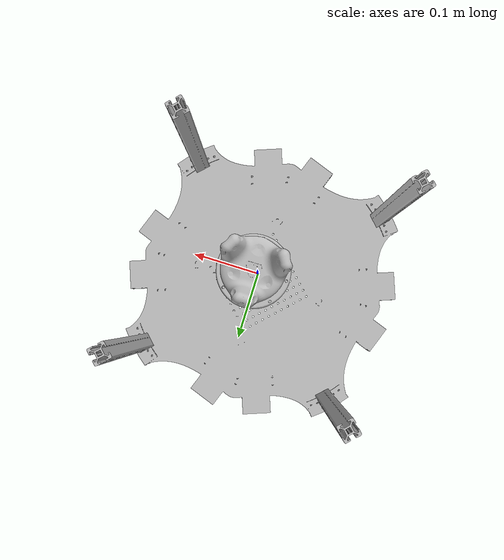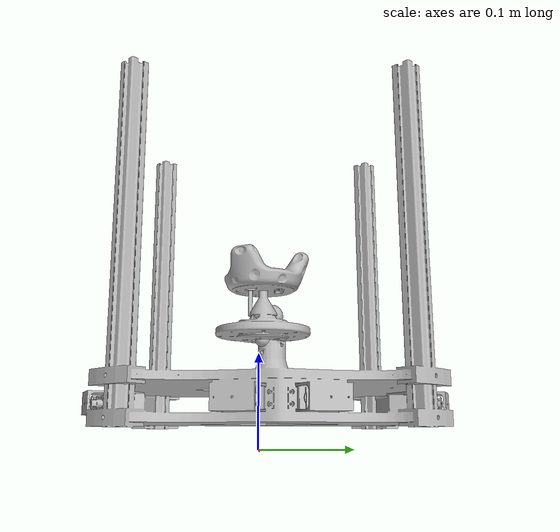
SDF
<sdf version="1.6">
	<model name="msj_platform_head">
		<link name="base">
			<self_collide>false</self_collide>
			<pose frame="">-0.009722422261997021 0.00986687305771657 0.0551351522633794 0.0 -0.0 0.0</pose>
			<inertial>
				<pose frame="">0.0 0.0 0.0 0 0 0</pose>
				<mass>15.629842988436991</mass>
				<inertia>
					<ixx>0.37101179139154744</ixx>
					<ixy>0.020544761689086373</ixy>
					<ixz>0.058964832543668265</ixz>
					<iyy>0.37110336276629335</iyy>
					<iyz>-0.05906303191293011</iyz>
					<izz>0.32968638674351486</izz>
				</inertia>
			</inertial>
			<collision name="base_collision">
				<geometry>
					<mesh>
						<uri>model://msj_platform_head/meshes/collisions/base.stl</uri>
						<scale>0.001 0.001 0.001</scale>
					</mesh>
				</geometry>
			</collision>
			<visual name="base_visual">
				<geometry>
					<mesh>
						<uri>model://msj_platform_head/meshes/visuals/base.stl</uri>
						<scale>0.001 0.001 0.001</scale>
					</mesh>
				</geometry>
			</visual>
		</link>
		<link name="top">
			<self_collide>false</self_collide>
			<pose frame="">0.003902664851542784 0.004492463597073772 0.1754722146164014 0.0 -0.0 0.0</pose>
			<inertial>
				<pose frame="">0.0 0.0 0.0 0 0 0</pose>
				<mass>1.20591356597939</mass>
				<inertia>
					<ixx>0.03819643364705958</ixx>
					<ixy>-2.4663343568917342e-05</ixy>
					<ixz>-0.0008183781921683772</ixz>
					<iyy>0.0381888418670597</iyy>
					<iyz>-0.0009525221954992814</iyz>
					<izz>0.0011780867159781737</izz>
				</inertia>
			</inertial>
			<collision name="top_collision">
				<geometry>
					<mesh>
						<uri>model://msj_platform_head/meshes/collisions/top.stl</uri>
						<scale>0.001 0.001 0.001</scale>
					</mesh>
				</geometry>
			</collision>
			<visual name="top_visual">
				<geometry>
					<mesh>
						<uri>model://msj_platform_head/meshes/visuals/top.stl</uri>
						<scale>0.001 0.001 0.001</scale>
					</mesh>
				</geometry>
			</visual>
		</link>
		<link name="sphere_link1">
			<self_collide>false</self_collide>
			<pose frame="">0.004242640688430471 0.004242640687649124 0.11549999999851424 0.0 -0.0 0.0</pose>
			<inertial>
				<pose frame="">0.0 0.0 0.0 0 0 0</pose>
				<mass>0.022028373175580263</mass>
				<inertia>
					<ixx>0.0002949351348937359</ixx>
					<ixy>-3.9651071733250453e-07</ixy>
					<ixz>-1.07944535545109e-05</ixz>
					<iyy>0.000294935134893882</iyy>
					<iyz>-1.0794453552522937e-05</iyz>
					<izz>1.4676403631671595e-06</izz>
				</inertia>
			</inertial>
			<collision name="sphere_link1_collision">
				<geometry>
					<mesh>
						<uri>model://msj_platform_head/meshes/collisions/sphere_link1.stl</uri>
						<scale>0.001 0.001 0.001</scale>
					</mesh>
				</geometry>
			</collision>
			<visual name="sphere_link1_visual">
				<geometry>
					<mesh>
						<uri>model://msj_platform_head/meshes/visuals/sphere_link1.stl</uri>
						<scale>0.001 0.001 0.001</scale>
					</mesh>
				</geometry>
			</visual>
		</link>
		<link name="sphere_link2">
			<self_collide>false</self_collide>
			<pose frame="">0.004242640688453875 0.0042426406876713415 0.11549999999847281 0.0 -0.0 0.0</pose>
			<inertial>
				<pose frame="">0.0 0.0 0.0 0 0 0</pose>
				<mass>0.0017340118826259295</mass>
				<inertia>
					<ixx>2.3173118047323906e-05</ixx>
					<ixy>-3.1212213901003247e-08</ixy>
					<ixz>-8.497091719340116e-07</ixz>
					<iyy>2.31731180473354e-05</iyy>
					<iyz>-8.497091717772792e-07</iyz>
					<izz>7.217824464186813e-08</izz>
				</inertia>
			</inertial>
			<collision name="sphere_link2_collision">
				<geometry>
					<mesh>
						<uri>model://msj_platform_head/meshes/collisions/sphere_link2.stl</uri>
						<scale>0.001 0.001 0.001</scale>
					</mesh>
				</geometry>
			</collision>
			<visual name="sphere_link2_visual">
				<geometry>
					<mesh>
						<uri>model://msj_platform_head/meshes/visuals/sphere_link2.stl</uri>
						<scale>0.001 0.001 0.001</scale>
					</mesh>
				</geometry>
			</visual>
		</link>
		<joint name="sphere_axis0" type="revolute">
			<parent>base</parent>
			<child>sphere_link1</child>
			<pose frame="">1.2199685706093533e-14 -9.303668946358811e-15 -4.142464149481384e-14 0 0 0</pose>
			<axis>
				<xyz>0.7901550123756897 -0.6129070536529773 -2.634760832362838e-12</xyz>
				<limit>
					<lower>-3.141592653589793</lower>
					<upper>3.141592653589793</upper>
				</limit>
				<use_parent_model_frame>0</use_parent_model_frame>
			</axis>
		</joint>
		<joint name="sphere_axis1" type="revolute">
			<parent>sphere_link1</parent>
			<child>sphere_link2</child>
			<pose frame="">-2.3314683517128287e-14 -2.2127299992291683e-14 0.0 0 0 0</pose>
			<axis>
				<xyz>0.6129070536529773 0.7901550123756897 -2.0217668703762803e-11</xyz>
				<limit>
					<lower>-3.141592653589793</lower>
					<upper>3.141592653589793</upper>
				</limit>
				<use_parent_model_frame>0</use_parent_model_frame>
			</axis>
		</joint>
		<joint name="sphere_axis2" type="revolute">
			<parent>sphere_link2</parent>
			<child>top</child>
			<pose frame="">0.00033997583688777643 -0.00024982290942455744 -0.05997221461792858 0 0 0</pose>
			<axis>
				<xyz>1.4409679196985146e-11 1.4409672158911102e-11 1.0</xyz>
				<limit>
					<lower>-3.141592653589793</lower>
					<upper>3.141592653589793</upper>
				</limit>
				<use_parent_model_frame>0</use_parent_model_frame>
			</axis>
		</joint>
		<plugin filename="libcardsflow_gazebo_plugin.so" name="cardsflow_gazebo_plugin" />
	</model>
</sdf>
